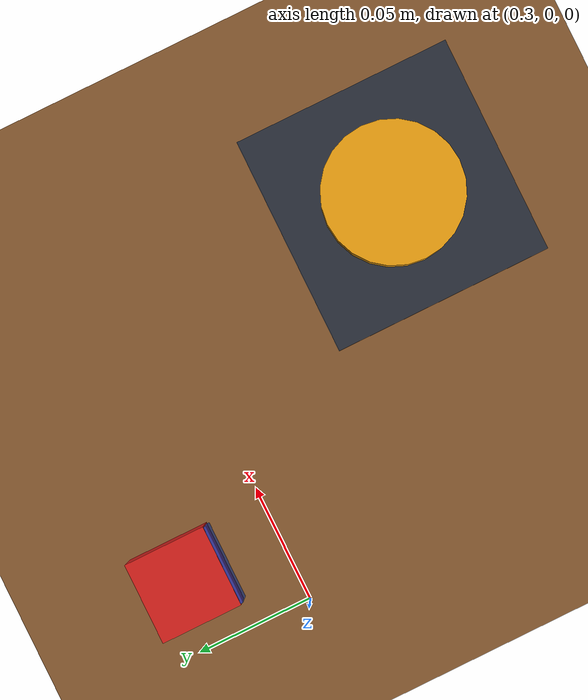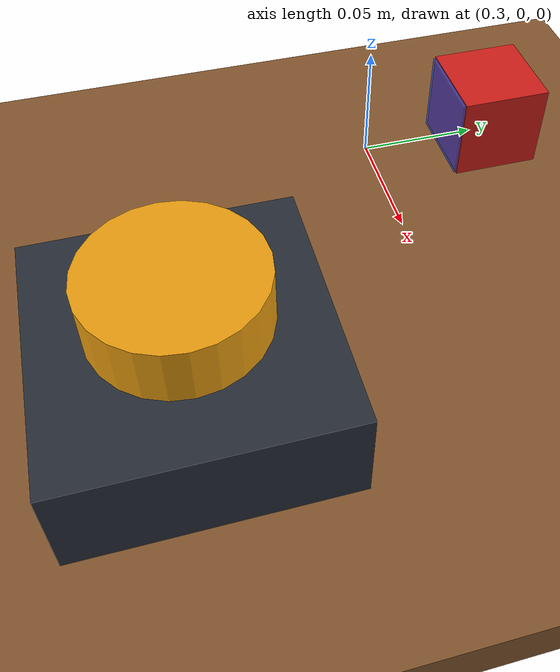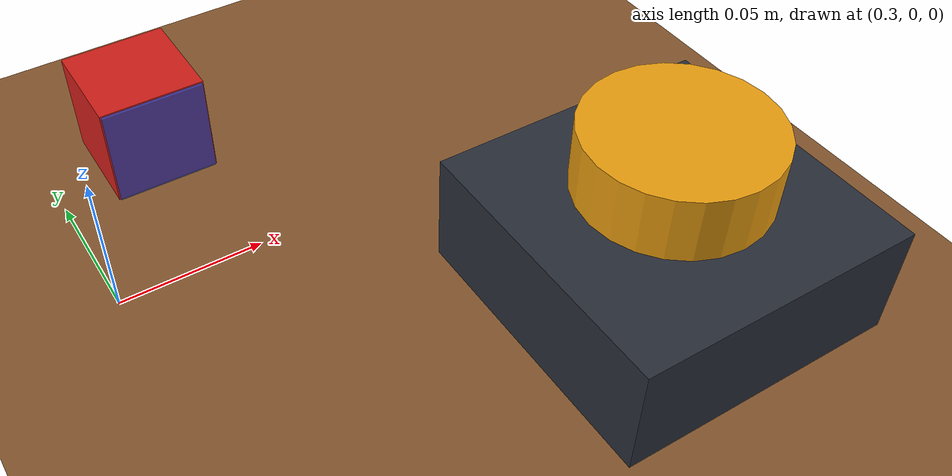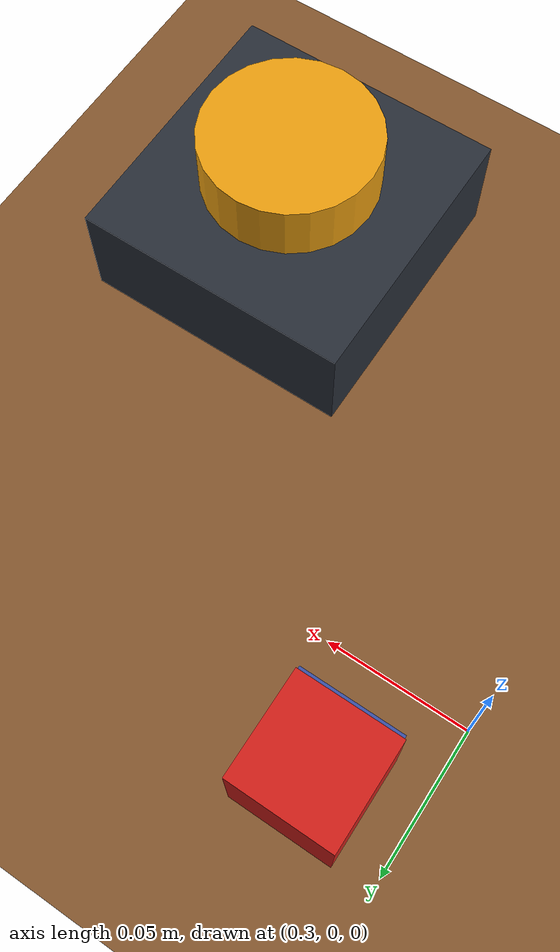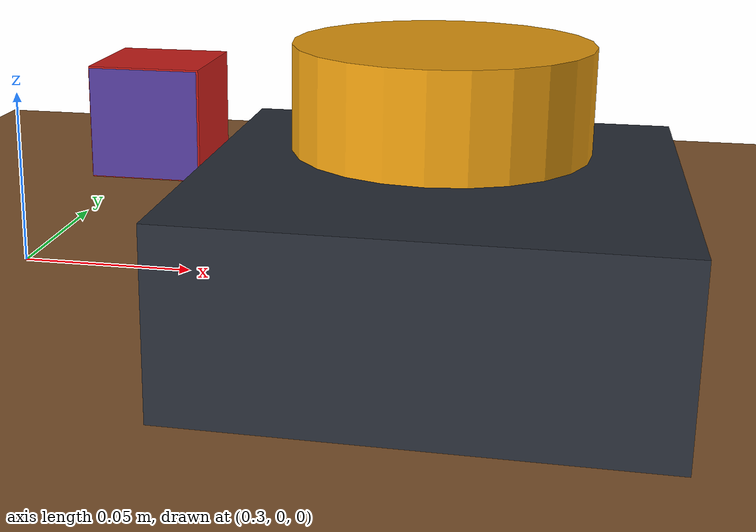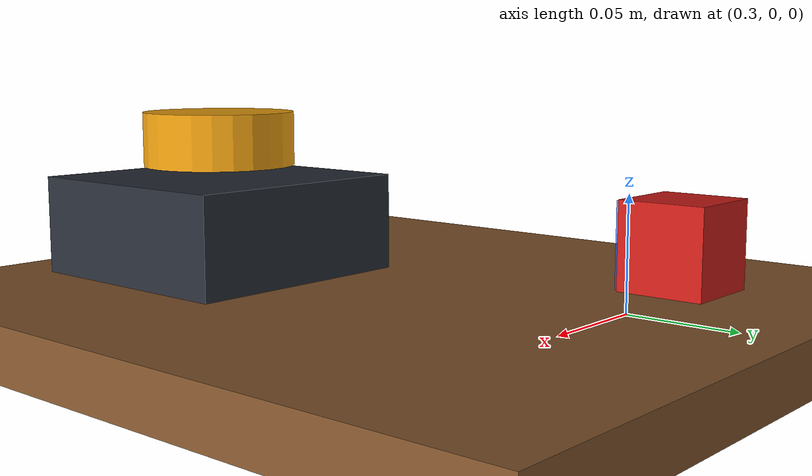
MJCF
<mujoco model="so101-private-demo-scene">
  <asset>
    <material name="demo_table_material" rgba="0.52 0.34 0.18 1"/>
    <material name="demo_cube_material" rgba="0.82 0.12 0.10 1"/>
    <material name="demo_goal_material" rgba="0.10 0.80 0.25 0.35"/>
    <material name="demo_button_housing_material" rgba="0.16 0.18 0.22 1"/>
    <material name="demo_button_material" rgba="0.92 0.62 0.06 1"/>
    <material name="demo_face_material" rgba="0.12 0.35 0.95 0.65"/>
  </asset>

  <worldbody>
    <body name="demo_table" pos="0.35 0 0.01">
      <geom name="demo_table_surface" type="box" size="0.35 0.25 0.01"
        material="demo_table_material" contype="1" conaffinity="1"
        friction="1 0.01 0.001" condim="4"/>
    </body>

    <body name="demo_cube" pos="0.33 0.04 0.037">
      <freejoint name="demo_cube_free"/>
      <geom name="demo_cube_collision" type="box" size="0.017 0.017 0.017"
        material="demo_cube_material" mass="0.025" contype="1" conaffinity="1"
        friction="1 0.01 0.001" condim="6"/>
      <!-- A named, thin target-face geom makes intended face contact observable. -->
      <geom name="demo_cube_target_face" type="box" pos="0 -0.0175 0"
        size="0.0165 0.0005 0.0165" material="demo_face_material"
        contype="1" conaffinity="1" friction="1 0.01 0.001" condim="6"/>
      <site name="demo_cube_center" pos="0 0 0" size="0.002" rgba="0.95 0.15 0.10 0.85" group="4"/>
      <site name="demo_target_face_marker" pos="0 -0.0182 0" size="0.004" rgba="0.12 0.35 0.95 0.80" group="4"/>
    </body>

    <geom name="demo_goal_region" type="cylinder" pos="0.43 0.04 0.0205"
      size="0.025 0.0005" material="demo_goal_material"
      contype="0" conaffinity="0" group="4"/>
    <site name="demo_goal_center" pos="0.43 0.04 0.021" size="0.003"
      rgba="0.10 0.80 0.25 0.85" group="4"/>

    <!-- The plunger is a passive slide joint.  Contact/activation is read from
         MuJoCo truth; no actuator or task-specific behavior is introduced. -->
    <body name="demo_button_base" pos="0.43 -0.10 0.025">
      <geom name="demo_button_housing" type="box" pos="0 0 0.018"
        size="0.045 0.045 0.018" material="demo_button_housing_material"
        contype="1" conaffinity="1" friction="1 0.01 0.001" condim="4"/>
      <body name="demo_button_large" pos="0 0 0.040">
        <joint name="demo_button_slide" type="slide" axis="0 0 -1"
          range="0 0.020" springref="0" stiffness="100" damping="2.0"/>
        <geom name="demo_button_plunger" type="cylinder" pos="0 0 0.010"
          size="0.028 0.010" material="demo_button_material" mass="0.015"
          contype="1" conaffinity="1" friction="1 0.01 0.001" condim="4"/>
        <site name="demo_button_activation_site" pos="0 0 0.020" size="0.004"
          rgba="0.95 0.70 0.08 0.90" group="4"/>
      </body>
    </body>

    <!-- Framework Evaluation Video camera; it is not an admitted robot sensor. -->
    <camera name="evaluation_external_camera" mode="targetbody" target="base"
      pos="0.72 -0.72 0.58" fovy="48"/>
  </worldbody>

  <sensor>
    <touch name="demo_button_touch" site="demo_button_activation_site"/>
    <jointpos name="demo_button_displacement" joint="demo_button_slide"/>
    <jointvel name="demo_button_velocity" joint="demo_button_slide"/>
  </sensor>
</mujoco>
